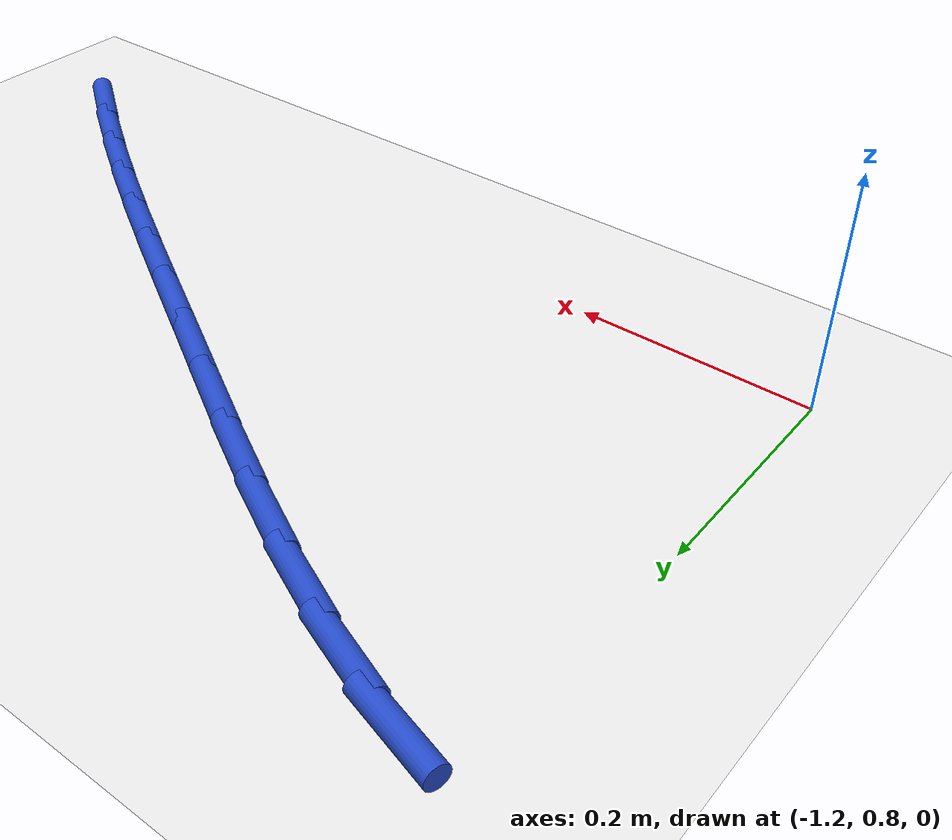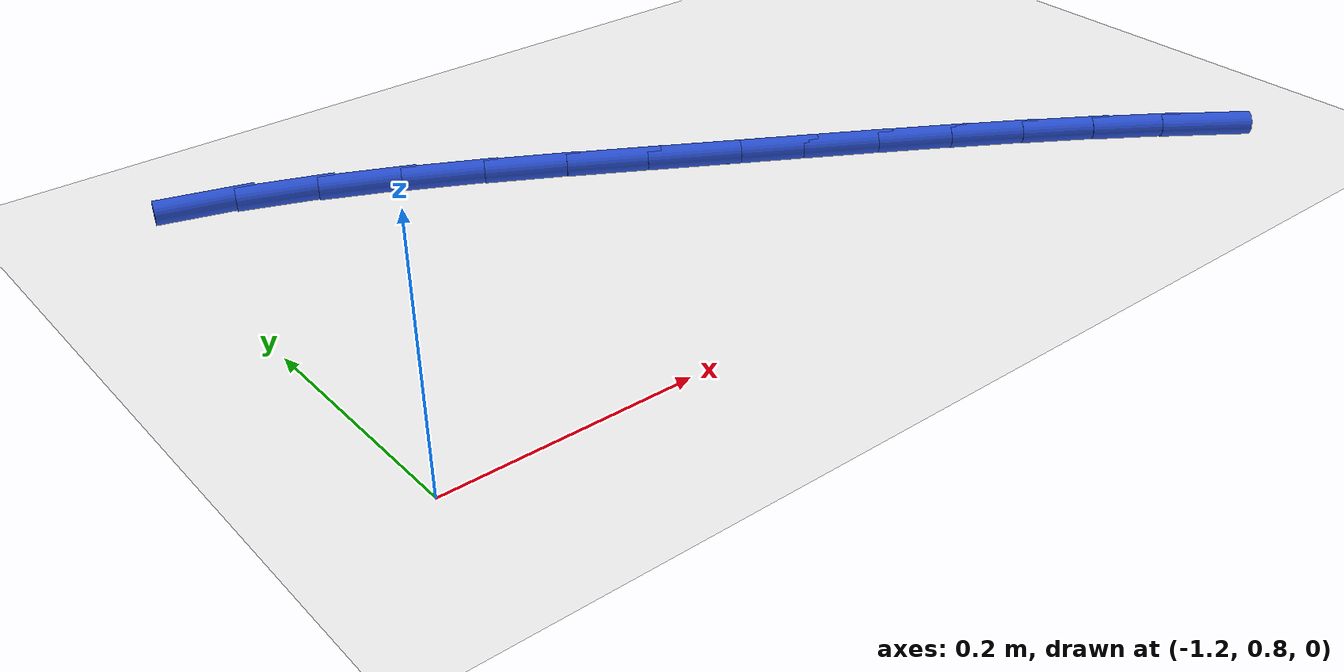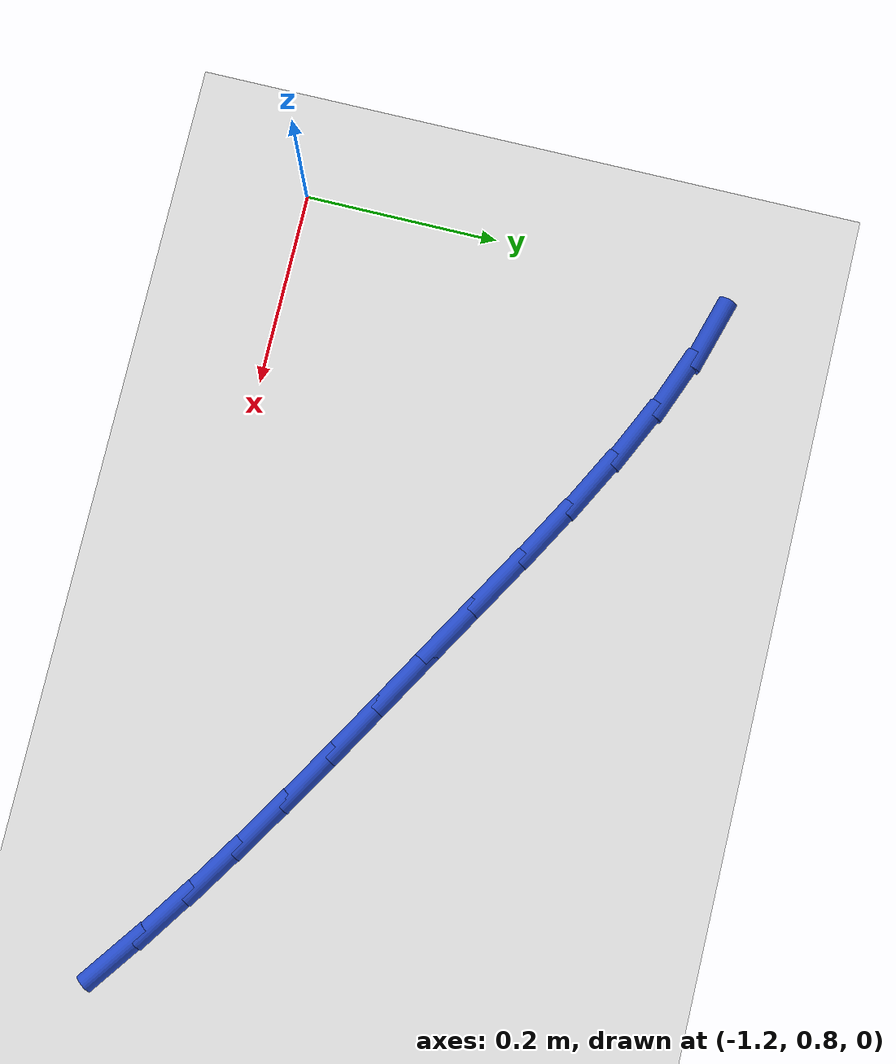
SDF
<sdf version="1.6">
 <world name="default">
  <model name="ground_plane">
   <static>1</static>
   <link name="link">
    <collision name="collision">
     <geometry><plane><normal>0 0 1</normal><size>100 100</size></plane></geometry>
     <surface><friction><ode><mu>100</mu><mu2>50</mu2></ode></friction></surface>
    </collision>
    <visual name="visual">
     <cast_shadows>0</cast_shadows>
     <geometry><plane><normal>0 0 1</normal><size>100 100</size></plane></geometry>
     <material>
      <script><uri>file://media/materials/scripts/gazebo.material</uri><name>Gazebo/WhiteGlow</name></script>
     </material>
    </visual>
   </link>
  </model>
  <model name="line">
   <link name="link_15">
    <pose>-0.4124710942255163 0.8025710466152028 0.01 0 1.57 -0.6317672971691728</pose>
    <collision name="collision">
     <geometry><cylinder><radius>0.01</radius><length>0.08</length></cylinder></geometry>
    </collision>
    <visual name="visual">
     <material>
      <script><name>Gazebo/Blue</name><uri>file://media/materials/scripts/gazebo.material</uri></script>
     </material>
     <geometry><cylinder><radius>0.01</radius><length>0.08</length></cylinder></geometry>
    </visual>
   </link>
   <link name="link_16">
    <pose>-0.4629099023423115 0.8394834289515051 0.01 0 1.57 -0.6004905815377188</pose>
    <collision name="collision">
     <geometry><cylinder><radius>0.01</radius><length>0.08</length></cylinder></geometry>
    </collision>
    <visual name="visual">
     <material>
      <script><name>Gazebo/Blue</name><uri>file://media/materials/scripts/gazebo.material</uri></script>
     </material>
     <geometry><cylinder><radius>0.01</radius><length>0.08</length></cylinder></geometry>
    </visual>
   </link>
   <link name="link_17">
    <pose>-0.5151453638142319 0.8752572631902814 0.01 0 1.57 -0.5754974854063674</pose>
    <collision name="collision">
     <geometry><cylinder><radius>0.01</radius><length>0.08</length></cylinder></geometry>
    </collision>
    <visual name="visual">
     <material>
      <script><name>Gazebo/Blue</name><uri>file://media/materials/scripts/gazebo.material</uri></script>
     </material>
     <geometry><cylinder><radius>0.01</radius><length>0.08</length></cylinder></geometry>
    </visual>
   </link>
   <link name="link_18">
    <pose>-0.5689700524766678 0.9101761447854214 0.01 0 1.57 -0.5565577880951711</pose>
    <collision name="collision">
     <geometry><cylinder><radius>0.01</radius><length>0.08</length></cylinder></geometry>
    </collision>
    <visual name="visual">
     <material>
      <script><name>Gazebo/Blue</name><uri>file://media/materials/scripts/gazebo.material</uri></script>
     </material>
     <geometry><cylinder><radius>0.01</radius><length>0.08</length></cylinder></geometry>
    </visual>
   </link>
   <link name="link_19">
    <pose>-0.6241765421650093 0.9445236691908143 0.01 0 1.57 -0.5434298245172007</pose>
    <collision name="collision">
     <geometry><cylinder><radius>0.01</radius><length>0.08</length></cylinder></geometry>
    </collision>
    <visual name="visual">
     <material>
      <script><name>Gazebo/Blue</name><uri>file://media/materials/scripts/gazebo.material</uri></script>
     </material>
     <geometry><cylinder><radius>0.01</radius><length>0.08</length></cylinder></geometry>
    </visual>
   </link>
   <link name="link_20">
    <pose>-0.6805574067146467 0.9785834318603499 0.01 0 1.57 -0.5358799808738938</pose>
    <collision name="collision">
     <geometry><cylinder><radius>0.01</radius><length>0.08</length></cylinder></geometry>
    </collision>
    <visual name="visual">
     <material>
      <script><name>Gazebo/Blue</name><uri>file://media/materials/scripts/gazebo.material</uri></script>
     </material>
     <geometry><cylinder><radius>0.01</radius><length>0.08</length></cylinder></geometry>
    </visual>
   </link>
   <link name="link_21">
    <pose>-0.7379052199609699 1.012639028247917 0.01 0 1.57 -0.5336938108367901</pose>
    <collision name="collision">
     <geometry><cylinder><radius>0.01</radius><length>0.08</length></cylinder></geometry>
    </collision>
    <visual name="visual">
     <material>
      <script><name>Gazebo/Blue</name><uri>file://media/materials/scripts/gazebo.material</uri></script>
     </material>
     <geometry><cylinder><radius>0.01</radius><length>0.08</length></cylinder></geometry>
    </visual>
   </link>
   <link name="link_22">
    <pose>-0.7960125557393696 1.0469740538074048 0.01 0 1.57 -0.536049900850159</pose>
    <collision name="collision">
     <geometry><cylinder><radius>0.01</radius><length>0.08</length></cylinder></geometry>
    </collision>
    <visual name="visual">
     <material>
      <script><name>Gazebo/Blue</name><uri>file://media/materials/scripts/gazebo.material</uri></script>
     </material>
     <geometry><cylinder><radius>0.01</radius><length>0.08</length></cylinder></geometry>
    </visual>
   </link>
   <link name="link_23">
    <pose>-0.8546740629514022 1.0818232623848474 0.01 0 1.57 -0.5329371182084864</pose>
    <collision name="collision">
     <geometry><cylinder><radius>0.01</radius><length>0.08</length></cylinder></geometry>
    </collision>
    <visual name="visual">
     <material>
      <script><name>Gazebo/Blue</name><uri>file://media/materials/scripts/gazebo.material</uri></script>
     </material>
     <geometry><cylinder><radius>0.01</radius><length>0.08</length></cylinder></geometry>
    </visual>
   </link>
   <link name="link_24">
    <pose>-0.913717123937584 1.1166509486404685 0.01 0 1.57 -0.516384862206082</pose>
    <collision name="collision">
     <geometry><cylinder><radius>0.01</radius><length>0.08</length></cylinder></geometry>
    </collision>
    <visual name="visual">
     <material>
      <script><name>Gazebo/Blue</name><uri>file://media/materials/scripts/gazebo.material</uri></script>
     </material>
     <geometry><cylinder><radius>0.01</radius><length>0.08</length></cylinder></geometry>
    </visual>
   </link>
   <link name="link_25">
    <pose>-0.9729952095123389 1.1503073530743773 0.01 0 1.57 -0.4854318818188492</pose>
    <collision name="collision">
     <geometry><cylinder><radius>0.01</radius><length>0.08</length></cylinder></geometry>
    </collision>
    <visual name="visual">
     <material>
      <script><name>Gazebo/Blue</name><uri>file://media/materials/scripts/gazebo.material</uri></script>
     </material>
     <geometry><cylinder><radius>0.01</radius><length>0.08</length></cylinder></geometry>
    </visual>
   </link>
   <link name="link_26">
    <pose>-1.0323625150772058 1.1816256613090035 0.01 0 1.57 -0.4384954746780567</pose>
    <collision name="collision">
     <geometry><cylinder><radius>0.01</radius><length>0.08</length></cylinder></geometry>
    </collision>
    <visual name="visual">
     <material>
      <script><name>Gazebo/Blue</name><uri>file://media/materials/scripts/gazebo.material</uri></script>
     </material>
     <geometry><cylinder><radius>0.01</radius><length>0.08</length></cylinder></geometry>
    </visual>
   </link>
   <link name="link_27">
    <pose>-1.0916732360337231 1.2094390589667772 0.01 0 1.57 -0.3731685436209515</pose>
    <collision name="collision">
     <geometry><cylinder><radius>0.01</radius><length>0.08</length></cylinder></geometry>
    </collision>
    <visual name="visual">
     <material>
      <script><name>Gazebo/Blue</name><uri>file://media/materials/scripts/gazebo.material</uri></script>
     </material>
     <geometry><cylinder><radius>0.01</radius><length>0.08</length></cylinder></geometry>
    </visual>
   </link>
   <link name="link_28">
    <pose>-1.1507815677834292 1.2325807316701285 0.01 0 1.57 -0.2863762668797362</pose>
    <collision name="collision">
     <geometry><cylinder><radius>0.01</radius><length>0.08</length></cylinder></geometry>
    </collision>
    <visual name="visual">
     <material>
      <script><name>Gazebo/Blue</name><uri>file://media/materials/scripts/gazebo.material</uri></script>
     </material>
     <geometry><cylinder><radius>0.01</radius><length>0.08</length></cylinder></geometry>
    </visual>
   </link>
  </model>
 </world>
</sdf>
